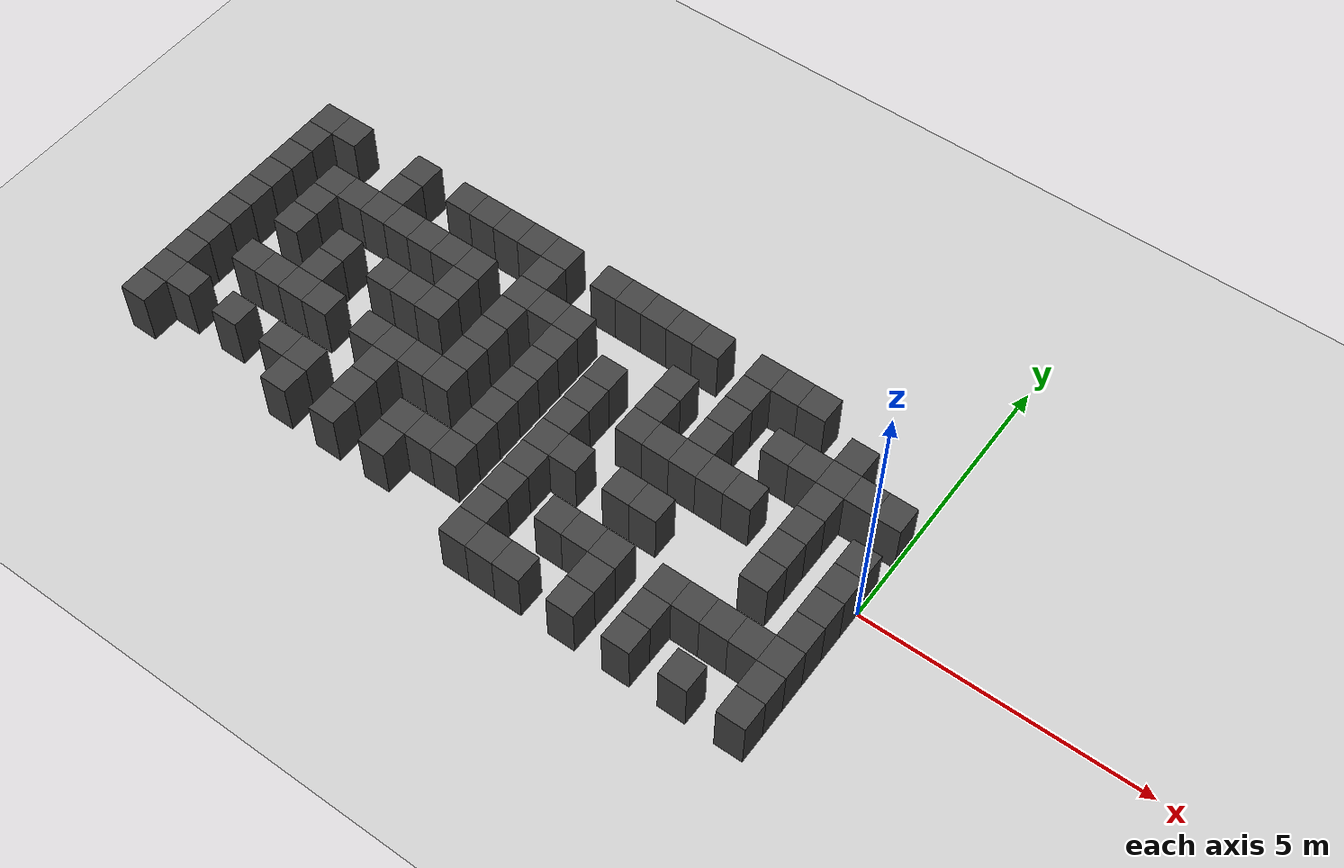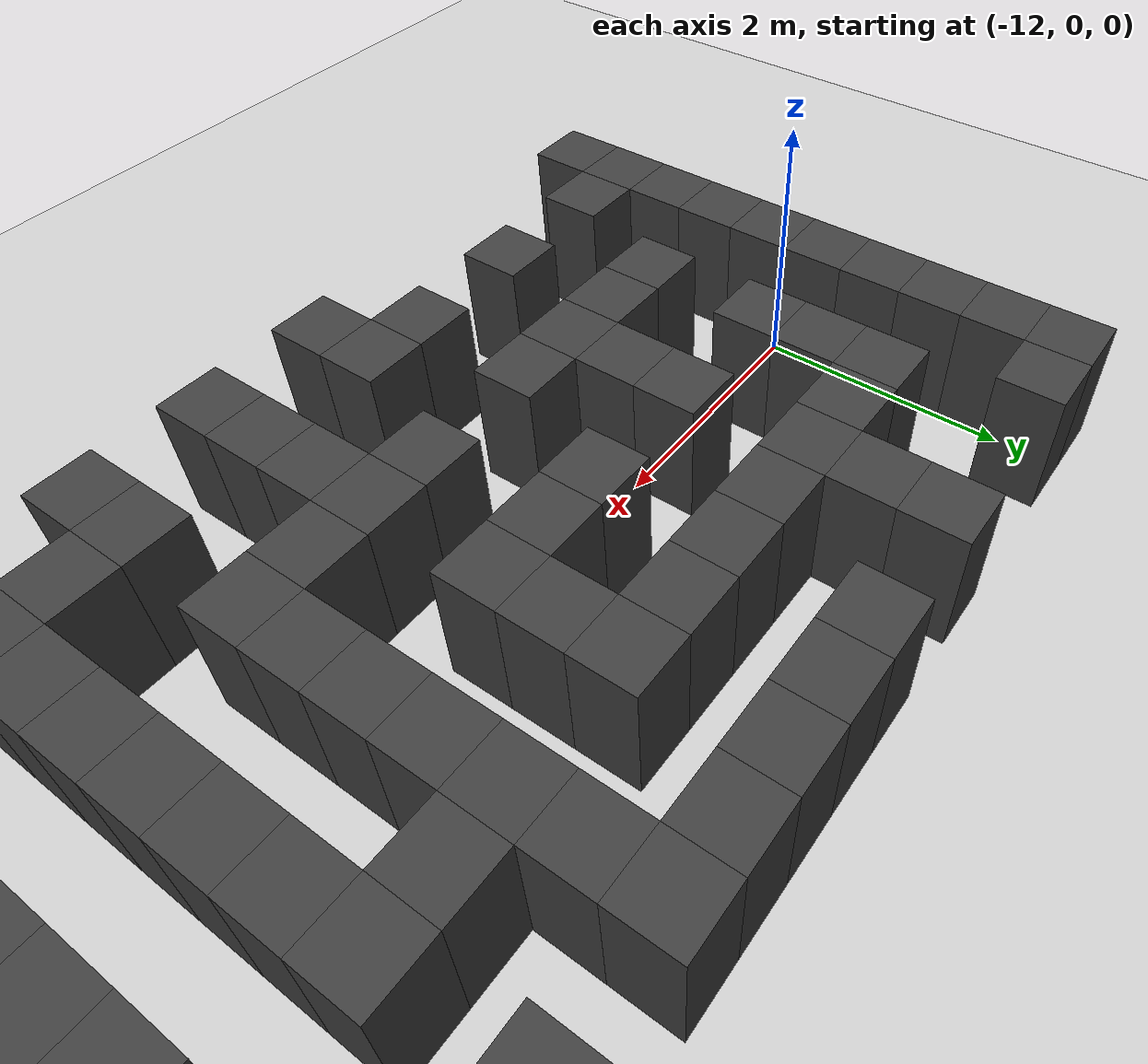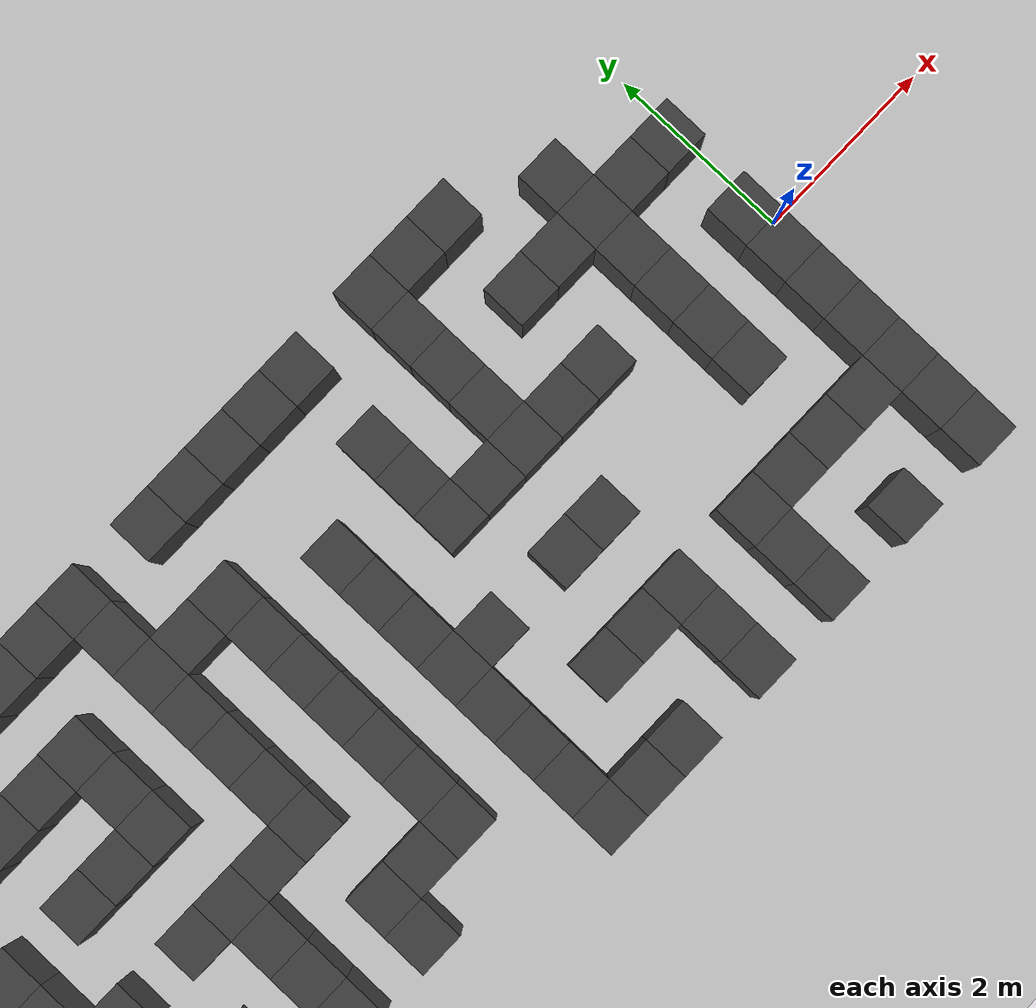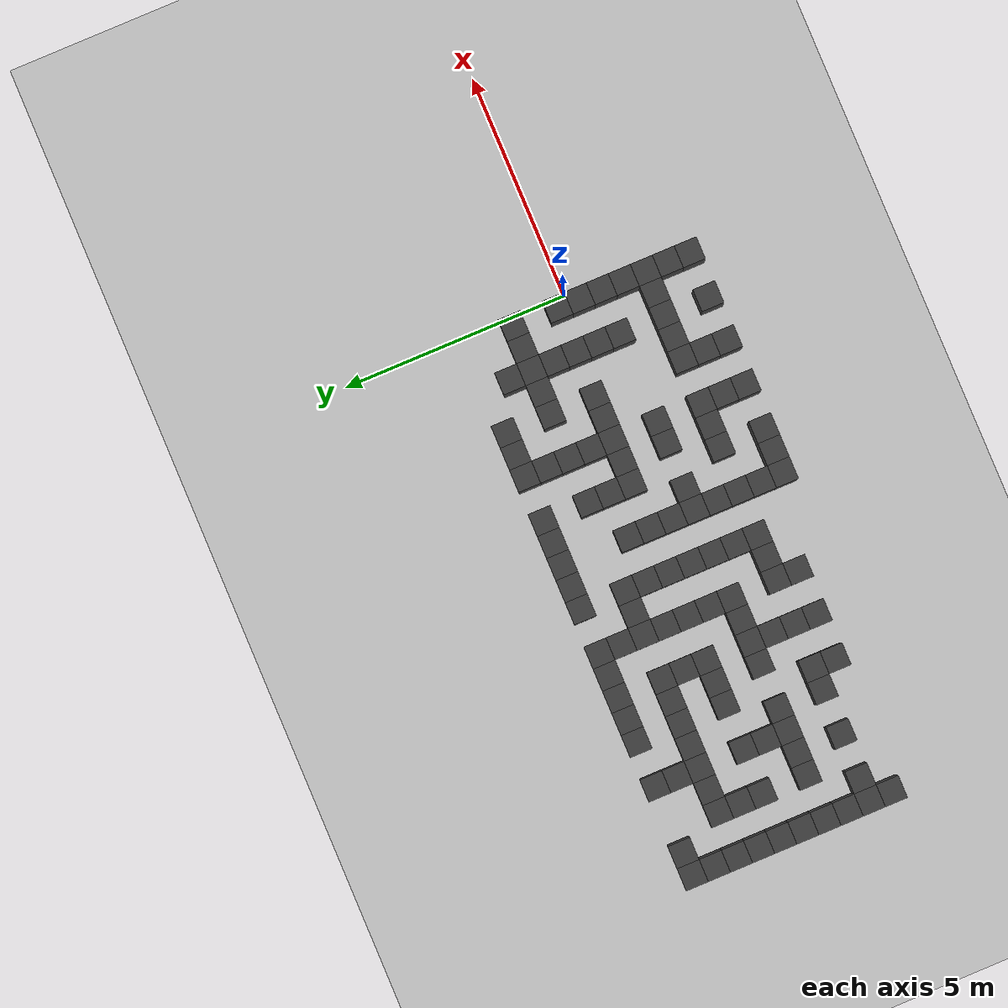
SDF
<sdf version="1.7">
 <world name="map_16783">
  <model name="ground_plane">
   <static>true</static>
   <link name="link">
    <collision name="collision">
     <geometry><plane><normal>0 0 1</normal><size>200 200</size></plane></geometry>
    </collision>
    <visual name="visual">
     <geometry><plane><normal>0 0 1</normal><size>200 200</size></plane></geometry>
     <material><ambient>0.8 0.8 0.8 1</ambient><diffuse>0.8 0.8 0.8 1</diffuse></material>
    </visual>
   </link>
  </model>
  <model name="maze_environment">
   <static>true</static>
   <link name="wall_490">
    <pose>-12.250 2.250 0.500 0 0 0</pose>
    <collision name="col"><geometry><box><size>0.5 0.5 1.0</size></box></geometry></collision>
    <visual name="vis">
     <geometry><box><size>0.5 0.5 1.0</size></box></geometry>
     <material><ambient>0.15 0.15 0.15 1</ambient><diffuse>0.25 0.25 0.25 1</diffuse></material>
    </visual>
   </link>
   <link name="wall_491">
    <pose>-11.750 2.250 0.500 0 0 0</pose>
    <collision name="col"><geometry><box><size>0.5 0.5 1.0</size></box></geometry></collision>
    <visual name="vis">
     <geometry><box><size>0.5 0.5 1.0</size></box></geometry>
     <material><ambient>0.15 0.15 0.15 1</ambient><diffuse>0.25 0.25 0.25 1</diffuse></material>
    </visual>
   </link>
   <link name="wall_492">
    <pose>-10.250 2.250 0.500 0 0 0</pose>
    <collision name="col"><geometry><box><size>0.5 0.5 1.0</size></box></geometry></collision>
    <visual name="vis">
     <geometry><box><size>0.5 0.5 1.0</size></box></geometry>
     <material><ambient>0.15 0.15 0.15 1</ambient><diffuse>0.25 0.25 0.25 1</diffuse></material>
    </visual>
   </link>
   <link name="wall_493">
    <pose>-9.250 2.250 0.500 0 0 0</pose>
    <collision name="col"><geometry><box><size>0.5 0.5 1.0</size></box></geometry></collision>
    <visual name="vis">
     <geometry><box><size>0.5 0.5 1.0</size></box></geometry>
     <material><ambient>0.15 0.15 0.15 1</ambient><diffuse>0.25 0.25 0.25 1</diffuse></material>
    </visual>
   </link>
   <link name="wall_494">
    <pose>-8.750 2.250 0.500 0 0 0</pose>
    <collision name="col"><geometry><box><size>0.5 0.5 1.0</size></box></geometry></collision>
    <visual name="vis">
     <geometry><box><size>0.5 0.5 1.0</size></box></geometry>
     <material><ambient>0.15 0.15 0.15 1</ambient><diffuse>0.25 0.25 0.25 1</diffuse></material>
    </visual>
   </link>
   <link name="wall_495">
    <pose>-8.250 2.250 0.500 0 0 0</pose>
    <collision name="col"><geometry><box><size>0.5 0.5 1.0</size></box></geometry></collision>
    <visual name="vis">
     <geometry><box><size>0.5 0.5 1.0</size></box></geometry>
     <material><ambient>0.15 0.15 0.15 1</ambient><diffuse>0.25 0.25 0.25 1</diffuse></material>
    </visual>
   </link>
   <link name="wall_496">
    <pose>-7.750 2.250 0.500 0 0 0</pose>
    <collision name="col"><geometry><box><size>0.5 0.5 1.0</size></box></geometry></collision>
    <visual name="vis">
     <geometry><box><size>0.5 0.5 1.0</size></box></geometry>
     <material><ambient>0.15 0.15 0.15 1</ambient><diffuse>0.25 0.25 0.25 1</diffuse></material>
    </visual>
   </link>
   <link name="wall_497">
    <pose>-7.250 2.250 0.500 0 0 0</pose>
    <collision name="col"><geometry><box><size>0.5 0.5 1.0</size></box></geometry></collision>
    <visual name="vis">
     <geometry><box><size>0.5 0.5 1.0</size></box></geometry>
     <material><ambient>0.15 0.15 0.15 1</ambient><diffuse>0.25 0.25 0.25 1</diffuse></material>
    </visual>
   </link>
   <link name="wall_498">
    <pose>-6.250 2.250 0.500 0 0 0</pose>
    <collision name="col"><geometry><box><size>0.5 0.5 1.0</size></box></geometry></collision>
    <visual name="vis">
     <geometry><box><size>0.5 0.5 1.0</size></box></geometry>
     <material><ambient>0.15 0.15 0.15 1</ambient><diffuse>0.25 0.25 0.25 1</diffuse></material>
    </visual>
   </link>
   <link name="wall_499">
    <pose>-5.750 2.250 0.500 0 0 0</pose>
    <collision name="col"><geometry><box><size>0.5 0.5 1.0</size></box></geometry></collision>
    <visual name="vis">
     <geometry><box><size>0.5 0.5 1.0</size></box></geometry>
     <material><ambient>0.15 0.15 0.15 1</ambient><diffuse>0.25 0.25 0.25 1</diffuse></material>
    </visual>
   </link>
   <link name="wall_500">
    <pose>-5.250 2.250 0.500 0 0 0</pose>
    <collision name="col"><geometry><box><size>0.5 0.5 1.0</size></box></geometry></collision>
    <visual name="vis">
     <geometry><box><size>0.5 0.5 1.0</size></box></geometry>
     <material><ambient>0.15 0.15 0.15 1</ambient><diffuse>0.25 0.25 0.25 1</diffuse></material>
    </visual>
   </link>
   <link name="wall_501">
    <pose>-4.750 2.250 0.500 0 0 0</pose>
    <collision name="col"><geometry><box><size>0.5 0.5 1.0</size></box></geometry></collision>
    <visual name="vis">
     <geometry><box><size>0.5 0.5 1.0</size></box></geometry>
     <material><ambient>0.15 0.15 0.15 1</ambient><diffuse>0.25 0.25 0.25 1</diffuse></material>
    </visual>
   </link>
   <link name="wall_502">
    <pose>-4.250 2.250 0.500 0 0 0</pose>
    <collision name="col"><geometry><box><size>0.5 0.5 1.0</size></box></geometry></collision>
    <visual name="vis">
     <geometry><box><size>0.5 0.5 1.0</size></box></geometry>
     <material><ambient>0.15 0.15 0.15 1</ambient><diffuse>0.25 0.25 0.25 1</diffuse></material>
    </visual>
   </link>
   <link name="wall_503">
    <pose>-3.250 2.250 0.500 0 0 0</pose>
    <collision name="col"><geometry><box><size>0.5 0.5 1.0</size></box></geometry></collision>
    <visual name="vis">
     <geometry><box><size>0.5 0.5 1.0</size></box></geometry>
     <material><ambient>0.15 0.15 0.15 1</ambient><diffuse>0.25 0.25 0.25 1</diffuse></material>
    </visual>
   </link>
   <link name="wall_504">
    <pose>-2.750 2.250 0.500 0 0 0</pose>
    <collision name="col"><geometry><box><size>0.5 0.5 1.0</size></box></geometry></collision>
    <visual name="vis">
     <geometry><box><size>0.5 0.5 1.0</size></box></geometry>
     <material><ambient>0.15 0.15 0.15 1</ambient><diffuse>0.25 0.25 0.25 1</diffuse></material>
    </visual>
   </link>
   <link name="wall_505">
    <pose>-2.250 2.250 0.500 0 0 0</pose>
    <collision name="col"><geometry><box><size>0.5 0.5 1.0</size></box></geometry></collision>
    <visual name="vis">
     <geometry><box><size>0.5 0.5 1.0</size></box></geometry>
     <material><ambient>0.15 0.15 0.15 1</ambient><diffuse>0.25 0.25 0.25 1</diffuse></material>
    </visual>
   </link>
   <link name="wall_521">
    <pose>-12.250 1.750 0.500 0 0 0</pose>
    <collision name="col"><geometry><box><size>0.5 0.5 1.0</size></box></geometry></collision>
    <visual name="vis">
     <geometry><box><size>0.5 0.5 1.0</size></box></geometry>
     <material><ambient>0.15 0.15 0.15 1</ambient><diffuse>0.25 0.25 0.25 1</diffuse></material>
    </visual>
   </link>
   <link name="wall_522">
    <pose>-10.250 1.750 0.500 0 0 0</pose>
    <collision name="col"><geometry><box><size>0.5 0.5 1.0</size></box></geometry></collision>
    <visual name="vis">
     <geometry><box><size>0.5 0.5 1.0</size></box></geometry>
     <material><ambient>0.15 0.15 0.15 1</ambient><diffuse>0.25 0.25 0.25 1</diffuse></material>
    </visual>
   </link>
   <link name="wall_523">
    <pose>-7.250 1.750 0.500 0 0 0</pose>
    <collision name="col"><geometry><box><size>0.5 0.5 1.0</size></box></geometry></collision>
    <visual name="vis">
     <geometry><box><size>0.5 0.5 1.0</size></box></geometry>
     <material><ambient>0.15 0.15 0.15 1</ambient><diffuse>0.25 0.25 0.25 1</diffuse></material>
    </visual>
   </link>
   <link name="wall_524">
    <pose>-3.250 1.750 0.500 0 0 0</pose>
    <collision name="col"><geometry><box><size>0.5 0.5 1.0</size></box></geometry></collision>
    <visual name="vis">
     <geometry><box><size>0.5 0.5 1.0</size></box></geometry>
     <material><ambient>0.15 0.15 0.15 1</ambient><diffuse>0.25 0.25 0.25 1</diffuse></material>
    </visual>
   </link>
   <link name="wall_525">
    <pose>-1.250 1.750 0.500 0 0 0</pose>
    <collision name="col"><geometry><box><size>0.5 0.5 1.0</size></box></geometry></collision>
    <visual name="vis">
     <geometry><box><size>0.5 0.5 1.0</size></box></geometry>
     <material><ambient>0.15 0.15 0.15 1</ambient><diffuse>0.25 0.25 0.25 1</diffuse></material>
    </visual>
   </link>
   <link name="wall_536">
    <pose>-12.250 1.250 0.500 0 0 0</pose>
    <collision name="col"><geometry><box><size>0.5 0.5 1.0</size></box></geometry></collision>
    <visual name="vis">
     <geometry><box><size>0.5 0.5 1.0</size></box></geometry>
     <material><ambient>0.15 0.15 0.15 1</ambient><diffuse>0.25 0.25 0.25 1</diffuse></material>
    </visual>
   </link>
   <link name="wall_537">
    <pose>-11.250 1.250 0.500 0 0 0</pose>
    <collision name="col"><geometry><box><size>0.5 0.5 1.0</size></box></geometry></collision>
    <visual name="vis">
     <geometry><box><size>0.5 0.5 1.0</size></box></geometry>
     <material><ambient>0.15 0.15 0.15 1</ambient><diffuse>0.25 0.25 0.25 1</diffuse></material>
    </visual>
   </link>
   <link name="wall_538">
    <pose>-10.750 1.250 0.500 0 0 0</pose>
    <collision name="col"><geometry><box><size>0.5 0.5 1.0</size></box></geometry></collision>
    <visual name="vis">
     <geometry><box><size>0.5 0.5 1.0</size></box></geometry>
     <material><ambient>0.15 0.15 0.15 1</ambient><diffuse>0.25 0.25 0.25 1</diffuse></material>
    </visual>
   </link>
   <link name="wall_539">
    <pose>-10.250 1.250 0.500 0 0 0</pose>
    <collision name="col"><geometry><box><size>0.5 0.5 1.0</size></box></geometry></collision>
    <visual name="vis">
     <geometry><box><size>0.5 0.5 1.0</size></box></geometry>
     <material><ambient>0.15 0.15 0.15 1</ambient><diffuse>0.25 0.25 0.25 1</diffuse></material>
    </visual>
   </link>
   <link name="wall_540">
    <pose>-9.750 1.250 0.500 0 0 0</pose>
    <collision name="col"><geometry><box><size>0.5 0.5 1.0</size></box></geometry></collision>
    <visual name="vis">
     <geometry><box><size>0.5 0.5 1.0</size></box></geometry>
     <material><ambient>0.15 0.15 0.15 1</ambient><diffuse>0.25 0.25 0.25 1</diffuse></material>
    </visual>
   </link>
   <link name="wall_541">
    <pose>-9.250 1.250 0.500 0 0 0</pose>
    <collision name="col"><geometry><box><size>0.5 0.5 1.0</size></box></geometry></collision>
    <visual name="vis">
     <geometry><box><size>0.5 0.5 1.0</size></box></geometry>
     <material><ambient>0.15 0.15 0.15 1</ambient><diffuse>0.25 0.25 0.25 1</diffuse></material>
    </visual>
   </link>
   <link name="wall_542">
    <pose>-8.750 1.250 0.500 0 0 0</pose>
    <collision name="col"><geometry><box><size>0.5 0.5 1.0</size></box></geometry></collision>
    <visual name="vis">
     <geometry><box><size>0.5 0.5 1.0</size></box></geometry>
     <material><ambient>0.15 0.15 0.15 1</ambient><diffuse>0.25 0.25 0.25 1</diffuse></material>
    </visual>
   </link>
   <link name="wall_543">
    <pose>-8.250 1.250 0.500 0 0 0</pose>
    <collision name="col"><geometry><box><size>0.5 0.5 1.0</size></box></geometry></collision>
    <visual name="vis">
     <geometry><box><size>0.5 0.5 1.0</size></box></geometry>
     <material><ambient>0.15 0.15 0.15 1</ambient><diffuse>0.25 0.25 0.25 1</diffuse></material>
    </visual>
   </link>
   <link name="wall_544">
    <pose>-7.250 1.250 0.500 0 0 0</pose>
    <collision name="col"><geometry><box><size>0.5 0.5 1.0</size></box></geometry></collision>
    <visual name="vis">
     <geometry><box><size>0.5 0.5 1.0</size></box></geometry>
     <material><ambient>0.15 0.15 0.15 1</ambient><diffuse>0.25 0.25 0.25 1</diffuse></material>
    </visual>
   </link>
   <link name="wall_545">
    <pose>-6.750 1.250 0.500 0 0 0</pose>
    <collision name="col"><geometry><box><size>0.5 0.5 1.0</size></box></geometry></collision>
    <visual name="vis">
     <geometry><box><size>0.5 0.5 1.0</size></box></geometry>
     <material><ambient>0.15 0.15 0.15 1</ambient><diffuse>0.25 0.25 0.25 1</diffuse></material>
    </visual>
   </link>
   <link name="wall_546">
    <pose>-6.250 1.250 0.500 0 0 0</pose>
    <collision name="col"><geometry><box><size>0.5 0.5 1.0</size></box></geometry></collision>
    <visual name="vis">
     <geometry><box><size>0.5 0.5 1.0</size></box></geometry>
     <material><ambient>0.15 0.15 0.15 1</ambient><diffuse>0.25 0.25 0.25 1</diffuse></material>
    </visual>
   </link>
   <link name="wall_547">
    <pose>-4.250 1.250 0.500 0 0 0</pose>
    <collision name="col"><geometry><box><size>0.5 0.5 1.0</size></box></geometry></collision>
    <visual name="vis">
     <geometry><box><size>0.5 0.5 1.0</size></box></geometry>
     <material><ambient>0.15 0.15 0.15 1</ambient><diffuse>0.25 0.25 0.25 1</diffuse></material>
    </visual>
   </link>
   <link name="wall_548">
    <pose>-3.250 1.250 0.500 0 0 0</pose>
    <collision name="col"><geometry><box><size>0.5 0.5 1.0</size></box></geometry></collision>
    <visual name="vis">
     <geometry><box><size>0.5 0.5 1.0</size></box></geometry>
     <material><ambient>0.15 0.15 0.15 1</ambient><diffuse>0.25 0.25 0.25 1</diffuse></material>
    </visual>
   </link>
   <link name="wall_549">
    <pose>-2.250 1.250 0.500 0 0 0</pose>
    <collision name="col"><geometry><box><size>0.5 0.5 1.0</size></box></geometry></collision>
    <visual name="vis">
     <geometry><box><size>0.5 0.5 1.0</size></box></geometry>
     <material><ambient>0.15 0.15 0.15 1</ambient><diffuse>0.25 0.25 0.25 1</diffuse></material>
    </visual>
   </link>
   <link name="wall_550">
    <pose>-1.750 1.250 0.500 0 0 0</pose>
    <collision name="col"><geometry><box><size>0.5 0.5 1.0</size></box></geometry></collision>
    <visual name="vis">
     <geometry><box><size>0.5 0.5 1.0</size></box></geometry>
     <material><ambient>0.15 0.15 0.15 1</ambient><diffuse>0.25 0.25 0.25 1</diffuse></material>
    </visual>
   </link>
   <link name="wall_551">
    <pose>-1.250 1.250 0.500 0 0 0</pose>
    <collision name="col"><geometry><box><size>0.5 0.5 1.0</size></box></geometry></collision>
    <visual name="vis">
     <geometry><box><size>0.5 0.5 1.0</size></box></geometry>
     <material><ambient>0.15 0.15 0.15 1</ambient><diffuse>0.25 0.25 0.25 1</diffuse></material>
    </visual>
   </link>
   <link name="wall_552">
    <pose>-0.750 1.250 0.500 0 0 0</pose>
    <collision name="col"><geometry><box><size>0.5 0.5 1.0</size></box></geometry></collision>
    <visual name="vis">
     <geometry><box><size>0.5 0.5 1.0</size></box></geometry>
     <material><ambient>0.15 0.15 0.15 1</ambient><diffuse>0.25 0.25 0.25 1</diffuse></material>
    </visual>
   </link>
   <link name="wall_553">
    <pose>-0.250 1.250 0.500 0 0 0</pose>
    <collision name="col"><geometry><box><size>0.5 0.5 1.0</size></box></geometry></collision>
    <visual name="vis">
     <geometry><box><size>0.5 0.5 1.0</size></box></geometry>
     <material><ambient>0.15 0.15 0.15 1</ambient><diffuse>0.25 0.25 0.25 1</diffuse></material>
    </visual>
   </link>
   <link name="wall_568">
    <pose>-12.250 0.750 0.500 0 0 0</pose>
    <collision name="col"><geometry><box><size>0.5 0.5 1.0</size></box></geometry></collision>
    <visual name="vis">
     <geometry><box><size>0.5 0.5 1.0</size></box></geometry>
     <material><ambient>0.15 0.15 0.15 1</ambient><diffuse>0.25 0.25 0.25 1</diffuse></material>
    </visual>
   </link>
   <link name="wall_569">
    <pose>-11.250 0.750 0.500 0 0 0</pose>
    <collision name="col"><geometry><box><size>0.5 0.5 1.0</size></box></geometry></collision>
    <visual name="vis">
     <geometry><box><size>0.5 0.5 1.0</size></box></geometry>
     <material><ambient>0.15 0.15 0.15 1</ambient><diffuse>0.25 0.25 0.25 1</diffuse></material>
    </visual>
   </link>
   <link name="wall_570">
    <pose>-8.250 0.750 0.500 0 0 0</pose>
    <collision name="col"><geometry><box><size>0.5 0.5 1.0</size></box></geometry></collision>
    <visual name="vis">
     <geometry><box><size>0.5 0.5 1.0</size></box></geometry>
     <material><ambient>0.15 0.15 0.15 1</ambient><diffuse>0.25 0.25 0.25 1</diffuse></material>
    </visual>
   </link>
   <link name="wall_571">
    <pose>-7.250 0.750 0.500 0 0 0</pose>
    <collision name="col"><geometry><box><size>0.5 0.5 1.0</size></box></geometry></collision>
    <visual name="vis">
     <geometry><box><size>0.5 0.5 1.0</size></box></geometry>
     <material><ambient>0.15 0.15 0.15 1</ambient><diffuse>0.25 0.25 0.25 1</diffuse></material>
    </visual>
   </link>
   <link name="wall_572">
    <pose>-6.250 0.750 0.500 0 0 0</pose>
    <collision name="col"><geometry><box><size>0.5 0.5 1.0</size></box></geometry></collision>
    <visual name="vis">
     <geometry><box><size>0.5 0.5 1.0</size></box></geometry>
     <material><ambient>0.15 0.15 0.15 1</ambient><diffuse>0.25 0.25 0.25 1</diffuse></material>
    </visual>
   </link>
   <link name="wall_573">
    <pose>-5.250 0.750 0.500 0 0 0</pose>
    <collision name="col"><geometry><box><size>0.5 0.5 1.0</size></box></geometry></collision>
    <visual name="vis">
     <geometry><box><size>0.5 0.5 1.0</size></box></geometry>
     <material><ambient>0.15 0.15 0.15 1</ambient><diffuse>0.25 0.25 0.25 1</diffuse></material>
    </visual>
   </link>
   <link name="wall_574">
    <pose>-4.250 0.750 0.500 0 0 0</pose>
    <collision name="col"><geometry><box><size>0.5 0.5 1.0</size></box></geometry></collision>
    <visual name="vis">
     <geometry><box><size>0.5 0.5 1.0</size></box></geometry>
     <material><ambient>0.15 0.15 0.15 1</ambient><diffuse>0.25 0.25 0.25 1</diffuse></material>
    </visual>
   </link>
   <link name="wall_575">
    <pose>-3.250 0.750 0.500 0 0 0</pose>
    <collision name="col"><geometry><box><size>0.5 0.5 1.0</size></box></geometry></collision>
    <visual name="vis">
     <geometry><box><size>0.5 0.5 1.0</size></box></geometry>
     <material><ambient>0.15 0.15 0.15 1</ambient><diffuse>0.25 0.25 0.25 1</diffuse></material>
    </visual>
   </link>
   <link name="wall_576">
    <pose>-1.250 0.750 0.500 0 0 0</pose>
    <collision name="col"><geometry><box><size>0.5 0.5 1.0</size></box></geometry></collision>
    <visual name="vis">
     <geometry><box><size>0.5 0.5 1.0</size></box></geometry>
     <material><ambient>0.15 0.15 0.15 1</ambient><diffuse>0.25 0.25 0.25 1</diffuse></material>
    </visual>
   </link>
   <link name="wall_584">
    <pose>-12.250 0.250 0.500 0 0 0</pose>
    <collision name="col"><geometry><box><size>0.5 0.5 1.0</size></box></geometry></collision>
    <visual name="vis">
     <geometry><box><size>0.5 0.5 1.0</size></box></geometry>
     <material><ambient>0.15 0.15 0.15 1</ambient><diffuse>0.25 0.25 0.25 1</diffuse></material>
    </visual>
   </link>
   <link name="wall_585">
    <pose>-11.250 0.250 0.500 0 0 0</pose>
    <collision name="col"><geometry><box><size>0.5 0.5 1.0</size></box></geometry></collision>
    <visual name="vis">
     <geometry><box><size>0.5 0.5 1.0</size></box></geometry>
     <material><ambient>0.15 0.15 0.15 1</ambient><diffuse>0.25 0.25 0.25 1</diffuse></material>
    </visual>
   </link>
   <link name="wall_586">
    <pose>-10.250 0.250 0.500 0 0 0</pose>
    <collision name="col"><geometry><box><size>0.5 0.5 1.0</size></box></geometry></collision>
    <visual name="vis">
     <geometry><box><size>0.5 0.5 1.0</size></box></geometry>
     <material><ambient>0.15 0.15 0.15 1</ambient><diffuse>0.25 0.25 0.25 1</diffuse></material>
    </visual>
   </link>
   <link name="wall_587">
    <pose>-9.250 0.250 0.500 0 0 0</pose>
    <collision name="col"><geometry><box><size>0.5 0.5 1.0</size></box></geometry></collision>
    <visual name="vis">
     <geometry><box><size>0.5 0.5 1.0</size></box></geometry>
     <material><ambient>0.15 0.15 0.15 1</ambient><diffuse>0.25 0.25 0.25 1</diffuse></material>
    </visual>
   </link>
   <link name="wall_588">
    <pose>-8.750 0.250 0.500 0 0 0</pose>
    <collision name="col"><geometry><box><size>0.5 0.5 1.0</size></box></geometry></collision>
    <visual name="vis">
     <geometry><box><size>0.5 0.5 1.0</size></box></geometry>
     <material><ambient>0.15 0.15 0.15 1</ambient><diffuse>0.25 0.25 0.25 1</diffuse></material>
    </visual>
   </link>
   <link name="wall_589">
    <pose>-8.250 0.250 0.500 0 0 0</pose>
    <collision name="col"><geometry><box><size>0.5 0.5 1.0</size></box></geometry></collision>
    <visual name="vis">
     <geometry><box><size>0.5 0.5 1.0</size></box></geometry>
     <material><ambient>0.15 0.15 0.15 1</ambient><diffuse>0.25 0.25 0.25 1</diffuse></material>
    </visual>
   </link>
   <link name="wall_590">
    <pose>-7.250 0.250 0.500 0 0 0</pose>
    <collision name="col"><geometry><box><size>0.5 0.5 1.0</size></box></geometry></collision>
    <visual name="vis">
     <geometry><box><size>0.5 0.5 1.0</size></box></geometry>
     <material><ambient>0.15 0.15 0.15 1</ambient><diffuse>0.25 0.25 0.25 1</diffuse></material>
    </visual>
   </link>
   <link name="wall_591">
    <pose>-6.250 0.250 0.500 0 0 0</pose>
    <collision name="col"><geometry><box><size>0.5 0.5 1.0</size></box></geometry></collision>
    <visual name="vis">
     <geometry><box><size>0.5 0.5 1.0</size></box></geometry>
     <material><ambient>0.15 0.15 0.15 1</ambient><diffuse>0.25 0.25 0.25 1</diffuse></material>
    </visual>
   </link>
   <link name="wall_592">
    <pose>-5.250 0.250 0.500 0 0 0</pose>
    <collision name="col"><geometry><box><size>0.5 0.5 1.0</size></box></geometry></collision>
    <visual name="vis">
     <geometry><box><size>0.5 0.5 1.0</size></box></geometry>
     <material><ambient>0.15 0.15 0.15 1</ambient><diffuse>0.25 0.25 0.25 1</diffuse></material>
    </visual>
   </link>
   <link name="wall_593">
    <pose>-4.250 0.250 0.500 0 0 0</pose>
    <collision name="col"><geometry><box><size>0.5 0.5 1.0</size></box></geometry></collision>
    <visual name="vis">
     <geometry><box><size>0.5 0.5 1.0</size></box></geometry>
     <material><ambient>0.15 0.15 0.15 1</ambient><diffuse>0.25 0.25 0.25 1</diffuse></material>
    </visual>
   </link>
   <link name="wall_594">
    <pose>-3.750 0.250 0.500 0 0 0</pose>
    <collision name="col"><geometry><box><size>0.5 0.5 1.0</size></box></geometry></collision>
    <visual name="vis">
     <geometry><box><size>0.5 0.5 1.0</size></box></geometry>
     <material><ambient>0.15 0.15 0.15 1</ambient><diffuse>0.25 0.25 0.25 1</diffuse></material>
    </visual>
   </link>
   <link name="wall_595">
    <pose>-3.250 0.250 0.500 0 0 0</pose>
    <collision name="col"><geometry><box><size>0.5 0.5 1.0</size></box></geometry></collision>
    <visual name="vis">
     <geometry><box><size>0.5 0.5 1.0</size></box></geometry>
     <material><ambient>0.15 0.15 0.15 1</ambient><diffuse>0.25 0.25 0.25 1</diffuse></material>
    </visual>
   </link>
   <link name="wall_596">
    <pose>-2.750 0.250 0.500 0 0 0</pose>
    <collision name="col"><geometry><box><size>0.5 0.5 1.0</size></box></geometry></collision>
    <visual name="vis">
     <geometry><box><size>0.5 0.5 1.0</size></box></geometry>
     <material><ambient>0.15 0.15 0.15 1</ambient><diffuse>0.25 0.25 0.25 1</diffuse></material>
    </visual>
   </link>
   <link name="wall_597">
    <pose>-2.250 0.250 0.500 0 0 0</pose>
    <collision name="col"><geometry><box><size>0.5 0.5 1.0</size></box></geometry></collision>
    <visual name="vis">
     <geometry><box><size>0.5 0.5 1.0</size></box></geometry>
     <material><ambient>0.15 0.15 0.15 1</ambient><diffuse>0.25 0.25 0.25 1</diffuse></material>
    </visual>
   </link>
   <link name="wall_598">
    <pose>-1.250 0.250 0.500 0 0 0</pose>
    <collision name="col"><geometry><box><size>0.5 0.5 1.0</size></box></geometry></collision>
    <visual name="vis">
     <geometry><box><size>0.5 0.5 1.0</size></box></geometry>
     <material><ambient>0.15 0.15 0.15 1</ambient><diffuse>0.25 0.25 0.25 1</diffuse></material>
    </visual>
   </link>
   <link name="wall_599">
    <pose>-0.250 0.250 0.500 0 0 0</pose>
    <collision name="col"><geometry><box><size>0.5 0.5 1.0</size></box></geometry></collision>
    <visual name="vis">
     <geometry><box><size>0.5 0.5 1.0</size></box></geometry>
     <material><ambient>0.15 0.15 0.15 1</ambient><diffuse>0.25 0.25 0.25 1</diffuse></material>
    </visual>
   </link>
   <link name="wall_618">
    <pose>-12.250 -0.250 0.500 0 0 0</pose>
    <collision name="col"><geometry><box><size>0.5 0.5 1.0</size></box></geometry></collision>
    <visual name="vis">
     <geometry><box><size>0.5 0.5 1.0</size></box></geometry>
     <material><ambient>0.15 0.15 0.15 1</ambient><diffuse>0.25 0.25 0.25 1</diffuse></material>
    </visual>
   </link>
   <link name="wall_619">
    <pose>-10.250 -0.250 0.500 0 0 0</pose>
    <collision name="col"><geometry><box><size>0.5 0.5 1.0</size></box></geometry></collision>
    <visual name="vis">
     <geometry><box><size>0.5 0.5 1.0</size></box></geometry>
     <material><ambient>0.15 0.15 0.15 1</ambient><diffuse>0.25 0.25 0.25 1</diffuse></material>
    </visual>
   </link>
   <link name="wall_620">
    <pose>-7.250 -0.250 0.500 0 0 0</pose>
    <collision name="col"><geometry><box><size>0.5 0.5 1.0</size></box></geometry></collision>
    <visual name="vis">
     <geometry><box><size>0.5 0.5 1.0</size></box></geometry>
     <material><ambient>0.15 0.15 0.15 1</ambient><diffuse>0.25 0.25 0.25 1</diffuse></material>
    </visual>
   </link>
   <link name="wall_621">
    <pose>-6.250 -0.250 0.500 0 0 0</pose>
    <collision name="col"><geometry><box><size>0.5 0.5 1.0</size></box></geometry></collision>
    <visual name="vis">
     <geometry><box><size>0.5 0.5 1.0</size></box></geometry>
     <material><ambient>0.15 0.15 0.15 1</ambient><diffuse>0.25 0.25 0.25 1</diffuse></material>
    </visual>
   </link>
   <link name="wall_622">
    <pose>-5.250 -0.250 0.500 0 0 0</pose>
    <collision name="col"><geometry><box><size>0.5 0.5 1.0</size></box></geometry></collision>
    <visual name="vis">
     <geometry><box><size>0.5 0.5 1.0</size></box></geometry>
     <material><ambient>0.15 0.15 0.15 1</ambient><diffuse>0.25 0.25 0.25 1</diffuse></material>
    </visual>
   </link>
   <link name="wall_623">
    <pose>-1.250 -0.250 0.500 0 0 0</pose>
    <collision name="col"><geometry><box><size>0.5 0.5 1.0</size></box></geometry></collision>
    <visual name="vis">
     <geometry><box><size>0.5 0.5 1.0</size></box></geometry>
     <material><ambient>0.15 0.15 0.15 1</ambient><diffuse>0.25 0.25 0.25 1</diffuse></material>
    </visual>
   </link>
   <link name="wall_624">
    <pose>-0.250 -0.250 0.500 0 0 0</pose>
    <collision name="col"><geometry><box><size>0.5 0.5 1.0</size></box></geometry></collision>
    <visual name="vis">
     <geometry><box><size>0.5 0.5 1.0</size></box></geometry>
     <material><ambient>0.15 0.15 0.15 1</ambient><diffuse>0.25 0.25 0.25 1</diffuse></material>
    </visual>
   </link>
   <link name="wall_631">
    <pose>-12.250 -0.750 0.500 0 0 0</pose>
    <collision name="col"><geometry><box><size>0.5 0.5 1.0</size></box></geometry></collision>
    <visual name="vis">
     <geometry><box><size>0.5 0.5 1.0</size></box></geometry>
     <material><ambient>0.15 0.15 0.15 1</ambient><diffuse>0.25 0.25 0.25 1</diffuse></material>
    </visual>
   </link>
   <link name="wall_632">
    <pose>-11.250 -0.750 0.500 0 0 0</pose>
    <collision name="col"><geometry><box><size>0.5 0.5 1.0</size></box></geometry></collision>
    <visual name="vis">
     <geometry><box><size>0.5 0.5 1.0</size></box></geometry>
     <material><ambient>0.15 0.15 0.15 1</ambient><diffuse>0.25 0.25 0.25 1</diffuse></material>
    </visual>
   </link>
   <link name="wall_633">
    <pose>-10.750 -0.750 0.500 0 0 0</pose>
    <collision name="col"><geometry><box><size>0.5 0.5 1.0</size></box></geometry></collision>
    <visual name="vis">
     <geometry><box><size>0.5 0.5 1.0</size></box></geometry>
     <material><ambient>0.15 0.15 0.15 1</ambient><diffuse>0.25 0.25 0.25 1</diffuse></material>
    </visual>
   </link>
   <link name="wall_634">
    <pose>-10.250 -0.750 0.500 0 0 0</pose>
    <collision name="col"><geometry><box><size>0.5 0.5 1.0</size></box></geometry></collision>
    <visual name="vis">
     <geometry><box><size>0.5 0.5 1.0</size></box></geometry>
     <material><ambient>0.15 0.15 0.15 1</ambient><diffuse>0.25 0.25 0.25 1</diffuse></material>
    </visual>
   </link>
   <link name="wall_635">
    <pose>-9.750 -0.750 0.500 0 0 0</pose>
    <collision name="col"><geometry><box><size>0.5 0.5 1.0</size></box></geometry></collision>
    <visual name="vis">
     <geometry><box><size>0.5 0.5 1.0</size></box></geometry>
     <material><ambient>0.15 0.15 0.15 1</ambient><diffuse>0.25 0.25 0.25 1</diffuse></material>
    </visual>
   </link>
   <link name="wall_636">
    <pose>-8.750 -0.750 0.500 0 0 0</pose>
    <collision name="col"><geometry><box><size>0.5 0.5 1.0</size></box></geometry></collision>
    <visual name="vis">
     <geometry><box><size>0.5 0.5 1.0</size></box></geometry>
     <material><ambient>0.15 0.15 0.15 1</ambient><diffuse>0.25 0.25 0.25 1</diffuse></material>
    </visual>
   </link>
   <link name="wall_637">
    <pose>-8.250 -0.750 0.500 0 0 0</pose>
    <collision name="col"><geometry><box><size>0.5 0.5 1.0</size></box></geometry></collision>
    <visual name="vis">
     <geometry><box><size>0.5 0.5 1.0</size></box></geometry>
     <material><ambient>0.15 0.15 0.15 1</ambient><diffuse>0.25 0.25 0.25 1</diffuse></material>
    </visual>
   </link>
   <link name="wall_638">
    <pose>-7.750 -0.750 0.500 0 0 0</pose>
    <collision name="col"><geometry><box><size>0.5 0.5 1.0</size></box></geometry></collision>
    <visual name="vis">
     <geometry><box><size>0.5 0.5 1.0</size></box></geometry>
     <material><ambient>0.15 0.15 0.15 1</ambient><diffuse>0.25 0.25 0.25 1</diffuse></material>
    </visual>
   </link>
   <link name="wall_639">
    <pose>-7.250 -0.750 0.500 0 0 0</pose>
    <collision name="col"><geometry><box><size>0.5 0.5 1.0</size></box></geometry></collision>
    <visual name="vis">
     <geometry><box><size>0.5 0.5 1.0</size></box></geometry>
     <material><ambient>0.15 0.15 0.15 1</ambient><diffuse>0.25 0.25 0.25 1</diffuse></material>
    </visual>
   </link>
   <link name="wall_640">
    <pose>-6.250 -0.750 0.500 0 0 0</pose>
    <collision name="col"><geometry><box><size>0.5 0.5 1.0</size></box></geometry></collision>
    <visual name="vis">
     <geometry><box><size>0.5 0.5 1.0</size></box></geometry>
     <material><ambient>0.15 0.15 0.15 1</ambient><diffuse>0.25 0.25 0.25 1</diffuse></material>
    </visual>
   </link>
   <link name="wall_641">
    <pose>-5.250 -0.750 0.500 0 0 0</pose>
    <collision name="col"><geometry><box><size>0.5 0.5 1.0</size></box></geometry></collision>
    <visual name="vis">
     <geometry><box><size>0.5 0.5 1.0</size></box></geometry>
     <material><ambient>0.15 0.15 0.15 1</ambient><diffuse>0.25 0.25 0.25 1</diffuse></material>
    </visual>
   </link>
   <link name="wall_642">
    <pose>-4.750 -0.750 0.500 0 0 0</pose>
    <collision name="col"><geometry><box><size>0.5 0.5 1.0</size></box></geometry></collision>
    <visual name="vis">
     <geometry><box><size>0.5 0.5 1.0</size></box></geometry>
     <material><ambient>0.15 0.15 0.15 1</ambient><diffuse>0.25 0.25 0.25 1</diffuse></material>
    </visual>
   </link>
   <link name="wall_643">
    <pose>-3.750 -0.750 0.500 0 0 0</pose>
    <collision name="col"><geometry><box><size>0.5 0.5 1.0</size></box></geometry></collision>
    <visual name="vis">
     <geometry><box><size>0.5 0.5 1.0</size></box></geometry>
     <material><ambient>0.15 0.15 0.15 1</ambient><diffuse>0.25 0.25 0.25 1</diffuse></material>
    </visual>
   </link>
   <link name="wall_644">
    <pose>-3.250 -0.750 0.500 0 0 0</pose>
    <collision name="col"><geometry><box><size>0.5 0.5 1.0</size></box></geometry></collision>
    <visual name="vis">
     <geometry><box><size>0.5 0.5 1.0</size></box></geometry>
     <material><ambient>0.15 0.15 0.15 1</ambient><diffuse>0.25 0.25 0.25 1</diffuse></material>
    </visual>
   </link>
   <link name="wall_645">
    <pose>-1.250 -0.750 0.500 0 0 0</pose>
    <collision name="col"><geometry><box><size>0.5 0.5 1.0</size></box></geometry></collision>
    <visual name="vis">
     <geometry><box><size>0.5 0.5 1.0</size></box></geometry>
     <material><ambient>0.15 0.15 0.15 1</ambient><diffuse>0.25 0.25 0.25 1</diffuse></material>
    </visual>
   </link>
   <link name="wall_646">
    <pose>-0.250 -0.750 0.500 0 0 0</pose>
    <collision name="col"><geometry><box><size>0.5 0.5 1.0</size></box></geometry></collision>
    <visual name="vis">
     <geometry><box><size>0.5 0.5 1.0</size></box></geometry>
     <material><ambient>0.15 0.15 0.15 1</ambient><diffuse>0.25 0.25 0.25 1</diffuse></material>
    </visual>
   </link>
   <link name="wall_666">
    <pose>-12.250 -1.250 0.500 0 0 0</pose>
    <collision name="col"><geometry><box><size>0.5 0.5 1.0</size></box></geometry></collision>
    <visual name="vis">
     <geometry><box><size>0.5 0.5 1.0</size></box></geometry>
     <material><ambient>0.15 0.15 0.15 1</ambient><diffuse>0.25 0.25 0.25 1</diffuse></material>
    </visual>
   </link>
   <link name="wall_667">
    <pose>-8.250 -1.250 0.500 0 0 0</pose>
    <collision name="col"><geometry><box><size>0.5 0.5 1.0</size></box></geometry></collision>
    <visual name="vis">
     <geometry><box><size>0.5 0.5 1.0</size></box></geometry>
     <material><ambient>0.15 0.15 0.15 1</ambient><diffuse>0.25 0.25 0.25 1</diffuse></material>
    </visual>
   </link>
   <link name="wall_668">
    <pose>-6.250 -1.250 0.500 0 0 0</pose>
    <collision name="col"><geometry><box><size>0.5 0.5 1.0</size></box></geometry></collision>
    <visual name="vis">
     <geometry><box><size>0.5 0.5 1.0</size></box></geometry>
     <material><ambient>0.15 0.15 0.15 1</ambient><diffuse>0.25 0.25 0.25 1</diffuse></material>
    </visual>
   </link>
   <link name="wall_669">
    <pose>-5.250 -1.250 0.500 0 0 0</pose>
    <collision name="col"><geometry><box><size>0.5 0.5 1.0</size></box></geometry></collision>
    <visual name="vis">
     <geometry><box><size>0.5 0.5 1.0</size></box></geometry>
     <material><ambient>0.15 0.15 0.15 1</ambient><diffuse>0.25 0.25 0.25 1</diffuse></material>
    </visual>
   </link>
   <link name="wall_670">
    <pose>-0.250 -1.250 0.500 0 0 0</pose>
    <collision name="col"><geometry><box><size>0.5 0.5 1.0</size></box></geometry></collision>
    <visual name="vis">
     <geometry><box><size>0.5 0.5 1.0</size></box></geometry>
     <material><ambient>0.15 0.15 0.15 1</ambient><diffuse>0.25 0.25 0.25 1</diffuse></material>
    </visual>
   </link>
   <link name="wall_676">
    <pose>-12.250 -1.750 0.500 0 0 0</pose>
    <collision name="col"><geometry><box><size>0.5 0.5 1.0</size></box></geometry></collision>
    <visual name="vis">
     <geometry><box><size>0.5 0.5 1.0</size></box></geometry>
     <material><ambient>0.15 0.15 0.15 1</ambient><diffuse>0.25 0.25 0.25 1</diffuse></material>
    </visual>
   </link>
   <link name="wall_677">
    <pose>-11.750 -1.750 0.500 0 0 0</pose>
    <collision name="col"><geometry><box><size>0.5 0.5 1.0</size></box></geometry></collision>
    <visual name="vis">
     <geometry><box><size>0.5 0.5 1.0</size></box></geometry>
     <material><ambient>0.15 0.15 0.15 1</ambient><diffuse>0.25 0.25 0.25 1</diffuse></material>
    </visual>
   </link>
   <link name="wall_678">
    <pose>-10.750 -1.750 0.500 0 0 0</pose>
    <collision name="col"><geometry><box><size>0.5 0.5 1.0</size></box></geometry></collision>
    <visual name="vis">
     <geometry><box><size>0.5 0.5 1.0</size></box></geometry>
     <material><ambient>0.15 0.15 0.15 1</ambient><diffuse>0.25 0.25 0.25 1</diffuse></material>
    </visual>
   </link>
   <link name="wall_679">
    <pose>-9.750 -1.750 0.500 0 0 0</pose>
    <collision name="col"><geometry><box><size>0.5 0.5 1.0</size></box></geometry></collision>
    <visual name="vis">
     <geometry><box><size>0.5 0.5 1.0</size></box></geometry>
     <material><ambient>0.15 0.15 0.15 1</ambient><diffuse>0.25 0.25 0.25 1</diffuse></material>
    </visual>
   </link>
   <link name="wall_680">
    <pose>-9.250 -1.750 0.500 0 0 0</pose>
    <collision name="col"><geometry><box><size>0.5 0.5 1.0</size></box></geometry></collision>
    <visual name="vis">
     <geometry><box><size>0.5 0.5 1.0</size></box></geometry>
     <material><ambient>0.15 0.15 0.15 1</ambient><diffuse>0.25 0.25 0.25 1</diffuse></material>
    </visual>
   </link>
   <link name="wall_681">
    <pose>-8.250 -1.750 0.500 0 0 0</pose>
    <collision name="col"><geometry><box><size>0.5 0.5 1.0</size></box></geometry></collision>
    <visual name="vis">
     <geometry><box><size>0.5 0.5 1.0</size></box></geometry>
     <material><ambient>0.15 0.15 0.15 1</ambient><diffuse>0.25 0.25 0.25 1</diffuse></material>
    </visual>
   </link>
   <link name="wall_682">
    <pose>-7.250 -1.750 0.500 0 0 0</pose>
    <collision name="col"><geometry><box><size>0.5 0.5 1.0</size></box></geometry></collision>
    <visual name="vis">
     <geometry><box><size>0.5 0.5 1.0</size></box></geometry>
     <material><ambient>0.15 0.15 0.15 1</ambient><diffuse>0.25 0.25 0.25 1</diffuse></material>
    </visual>
   </link>
   <link name="wall_683">
    <pose>-6.750 -1.750 0.500 0 0 0</pose>
    <collision name="col"><geometry><box><size>0.5 0.5 1.0</size></box></geometry></collision>
    <visual name="vis">
     <geometry><box><size>0.5 0.5 1.0</size></box></geometry>
     <material><ambient>0.15 0.15 0.15 1</ambient><diffuse>0.25 0.25 0.25 1</diffuse></material>
    </visual>
   </link>
   <link name="wall_684">
    <pose>-6.250 -1.750 0.500 0 0 0</pose>
    <collision name="col"><geometry><box><size>0.5 0.5 1.0</size></box></geometry></collision>
    <visual name="vis">
     <geometry><box><size>0.5 0.5 1.0</size></box></geometry>
     <material><ambient>0.15 0.15 0.15 1</ambient><diffuse>0.25 0.25 0.25 1</diffuse></material>
    </visual>
   </link>
   <link name="wall_685">
    <pose>-5.250 -1.750 0.500 0 0 0</pose>
    <collision name="col"><geometry><box><size>0.5 0.5 1.0</size></box></geometry></collision>
    <visual name="vis">
     <geometry><box><size>0.5 0.5 1.0</size></box></geometry>
     <material><ambient>0.15 0.15 0.15 1</ambient><diffuse>0.25 0.25 0.25 1</diffuse></material>
    </visual>
   </link>
   <link name="wall_686">
    <pose>-4.250 -1.750 0.500 0 0 0</pose>
    <collision name="col"><geometry><box><size>0.5 0.5 1.0</size></box></geometry></collision>
    <visual name="vis">
     <geometry><box><size>0.5 0.5 1.0</size></box></geometry>
     <material><ambient>0.15 0.15 0.15 1</ambient><diffuse>0.25 0.25 0.25 1</diffuse></material>
    </visual>
   </link>
   <link name="wall_687">
    <pose>-3.750 -1.750 0.500 0 0 0</pose>
    <collision name="col"><geometry><box><size>0.5 0.5 1.0</size></box></geometry></collision>
    <visual name="vis">
     <geometry><box><size>0.5 0.5 1.0</size></box></geometry>
     <material><ambient>0.15 0.15 0.15 1</ambient><diffuse>0.25 0.25 0.25 1</diffuse></material>
    </visual>
   </link>
   <link name="wall_688">
    <pose>-3.250 -1.750 0.500 0 0 0</pose>
    <collision name="col"><geometry><box><size>0.5 0.5 1.0</size></box></geometry></collision>
    <visual name="vis">
     <geometry><box><size>0.5 0.5 1.0</size></box></geometry>
     <material><ambient>0.15 0.15 0.15 1</ambient><diffuse>0.25 0.25 0.25 1</diffuse></material>
    </visual>
   </link>
   <link name="wall_689">
    <pose>-2.250 -1.750 0.500 0 0 0</pose>
    <collision name="col"><geometry><box><size>0.5 0.5 1.0</size></box></geometry></collision>
    <visual name="vis">
     <geometry><box><size>0.5 0.5 1.0</size></box></geometry>
     <material><ambient>0.15 0.15 0.15 1</ambient><diffuse>0.25 0.25 0.25 1</diffuse></material>
    </visual>
   </link>
   <link name="wall_690">
    <pose>-1.750 -1.750 0.500 0 0 0</pose>
    <collision name="col"><geometry><box><size>0.5 0.5 1.0</size></box></geometry></collision>
    <visual name="vis">
     <geometry><box><size>0.5 0.5 1.0</size></box></geometry>
     <material><ambient>0.15 0.15 0.15 1</ambient><diffuse>0.25 0.25 0.25 1</diffuse></material>
    </visual>
   </link>
   <link name="wall_691">
    <pose>-1.250 -1.750 0.500 0 0 0</pose>
    <collision name="col"><geometry><box><size>0.5 0.5 1.0</size></box></geometry></collision>
    <visual name="vis">
     <geometry><box><size>0.5 0.5 1.0</size></box></geometry>
     <material><ambient>0.15 0.15 0.15 1</ambient><diffuse>0.25 0.25 0.25 1</diffuse></material>
    </visual>
   </link>
   <link name="wall_692">
    <pose>-0.750 -1.750 0.500 0 0 0</pose>
    <collision name="col"><geometry><box><size>0.5 0.5 1.0</size></box></geometry></collision>
    <visual name="vis">
     <geometry><box><size>0.5 0.5 1.0</size></box></geometry>
     <material><ambient>0.15 0.15 0.15 1</ambient><diffuse>0.25 0.25 0.25 1</diffuse></material>
    </visual>
   </link>
   <link name="wall_693">
    <pose>-0.250 -1.750 0.500 0 0 0</pose>
    <collision name="col"><geometry><box><size>0.5 0.5 1.0</size></box></geometry></collision>
    <visual name="vis">
     <geometry><box><size>0.5 0.5 1.0</size></box></geometry>
     <material><ambient>0.15 0.15 0.15 1</ambient><diffuse>0.25 0.25 0.25 1</diffuse></material>
    </visual>
   </link>
   <link name="wall_710">
    <pose>-12.250 -2.250 0.500 0 0 0</pose>
    <collision name="col"><geometry><box><size>0.5 0.5 1.0</size></box></geometry></collision>
    <visual name="vis">
     <geometry><box><size>0.5 0.5 1.0</size></box></geometry>
     <material><ambient>0.15 0.15 0.15 1</ambient><diffuse>0.25 0.25 0.25 1</diffuse></material>
    </visual>
   </link>
   <link name="wall_711">
    <pose>-9.250 -2.250 0.500 0 0 0</pose>
    <collision name="col"><geometry><box><size>0.5 0.5 1.0</size></box></geometry></collision>
    <visual name="vis">
     <geometry><box><size>0.5 0.5 1.0</size></box></geometry>
     <material><ambient>0.15 0.15 0.15 1</ambient><diffuse>0.25 0.25 0.25 1</diffuse></material>
    </visual>
   </link>
   <link name="wall_712">
    <pose>-8.250 -2.250 0.500 0 0 0</pose>
    <collision name="col"><geometry><box><size>0.5 0.5 1.0</size></box></geometry></collision>
    <visual name="vis">
     <geometry><box><size>0.5 0.5 1.0</size></box></geometry>
     <material><ambient>0.15 0.15 0.15 1</ambient><diffuse>0.25 0.25 0.25 1</diffuse></material>
    </visual>
   </link>
   <link name="wall_713">
    <pose>-7.250 -2.250 0.500 0 0 0</pose>
    <collision name="col"><geometry><box><size>0.5 0.5 1.0</size></box></geometry></collision>
    <visual name="vis">
     <geometry><box><size>0.5 0.5 1.0</size></box></geometry>
     <material><ambient>0.15 0.15 0.15 1</ambient><diffuse>0.25 0.25 0.25 1</diffuse></material>
    </visual>
   </link>
   <link name="wall_714">
    <pose>-5.250 -2.250 0.500 0 0 0</pose>
    <collision name="col"><geometry><box><size>0.5 0.5 1.0</size></box></geometry></collision>
    <visual name="vis">
     <geometry><box><size>0.5 0.5 1.0</size></box></geometry>
     <material><ambient>0.15 0.15 0.15 1</ambient><diffuse>0.25 0.25 0.25 1</diffuse></material>
    </visual>
   </link>
   <link name="wall_715">
    <pose>-3.250 -2.250 0.500 0 0 0</pose>
    <collision name="col"><geometry><box><size>0.5 0.5 1.0</size></box></geometry></collision>
    <visual name="vis">
     <geometry><box><size>0.5 0.5 1.0</size></box></geometry>
     <material><ambient>0.15 0.15 0.15 1</ambient><diffuse>0.25 0.25 0.25 1</diffuse></material>
    </visual>
   </link>
   <link name="wall_716">
    <pose>-2.250 -2.250 0.500 0 0 0</pose>
    <collision name="col"><geometry><box><size>0.5 0.5 1.0</size></box></geometry></collision>
    <visual name="vis">
     <geometry><box><size>0.5 0.5 1.0</size></box></geometry>
     <material><ambient>0.15 0.15 0.15 1</ambient><diffuse>0.25 0.25 0.25 1</diffuse></material>
    </visual>
   </link>
   <link name="wall_717">
    <pose>-0.250 -2.250 0.500 0 0 0</pose>
    <collision name="col"><geometry><box><size>0.5 0.5 1.0</size></box></geometry></collision>
    <visual name="vis">
     <geometry><box><size>0.5 0.5 1.0</size></box></geometry>
     <material><ambient>0.15 0.15 0.15 1</ambient><diffuse>0.25 0.25 0.25 1</diffuse></material>
    </visual>
   </link>
   <link name="wall_732">
    <pose>-5.250 -2.750 0.500 0 0 0</pose>
    <collision name="col"><geometry><box><size>0.5 0.5 1.0</size></box></geometry></collision>
    <visual name="vis">
     <geometry><box><size>0.5 0.5 1.0</size></box></geometry>
     <material><ambient>0.15 0.15 0.15 1</ambient><diffuse>0.25 0.25 0.25 1</diffuse></material>
    </visual>
   </link>
   <link name="wall_733">
    <pose>-4.750 -2.750 0.500 0 0 0</pose>
    <collision name="col"><geometry><box><size>0.5 0.5 1.0</size></box></geometry></collision>
    <visual name="vis">
     <geometry><box><size>0.5 0.5 1.0</size></box></geometry>
     <material><ambient>0.15 0.15 0.15 1</ambient><diffuse>0.25 0.25 0.25 1</diffuse></material>
    </visual>
   </link>
   <link name="wall_734">
    <pose>-4.250 -2.750 0.500 0 0 0</pose>
    <collision name="col"><geometry><box><size>0.5 0.5 1.0</size></box></geometry></collision>
    <visual name="vis">
     <geometry><box><size>0.5 0.5 1.0</size></box></geometry>
     <material><ambient>0.15 0.15 0.15 1</ambient><diffuse>0.25 0.25 0.25 1</diffuse></material>
    </visual>
   </link>
   <link name="wall_735">
    <pose>-3.250 -2.750 0.500 0 0 0</pose>
    <collision name="col"><geometry><box><size>0.5 0.5 1.0</size></box></geometry></collision>
    <visual name="vis">
     <geometry><box><size>0.5 0.5 1.0</size></box></geometry>
     <material><ambient>0.15 0.15 0.15 1</ambient><diffuse>0.25 0.25 0.25 1</diffuse></material>
    </visual>
   </link>
   <link name="wall_736">
    <pose>-2.250 -2.750 0.500 0 0 0</pose>
    <collision name="col"><geometry><box><size>0.5 0.5 1.0</size></box></geometry></collision>
    <visual name="vis">
     <geometry><box><size>0.5 0.5 1.0</size></box></geometry>
     <material><ambient>0.15 0.15 0.15 1</ambient><diffuse>0.25 0.25 0.25 1</diffuse></material>
    </visual>
   </link>
   <link name="wall_737">
    <pose>-1.250 -2.750 0.500 0 0 0</pose>
    <collision name="col"><geometry><box><size>0.5 0.5 1.0</size></box></geometry></collision>
    <visual name="vis">
     <geometry><box><size>0.5 0.5 1.0</size></box></geometry>
     <material><ambient>0.15 0.15 0.15 1</ambient><diffuse>0.25 0.25 0.25 1</diffuse></material>
    </visual>
   </link>
   <link name="wall_738">
    <pose>-0.250 -2.750 0.500 0 0 0</pose>
    <collision name="col"><geometry><box><size>0.5 0.5 1.0</size></box></geometry></collision>
    <visual name="vis">
     <geometry><box><size>0.5 0.5 1.0</size></box></geometry>
     <material><ambient>0.15 0.15 0.15 1</ambient><diffuse>0.25 0.25 0.25 1</diffuse></material>
    </visual>
   </link>
  </model>
 </world>
</sdf>
